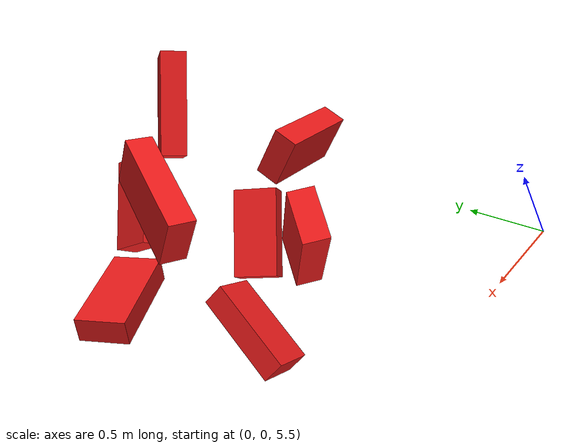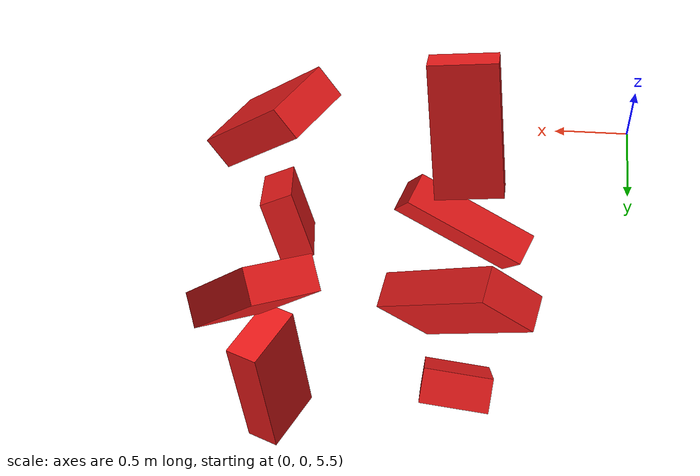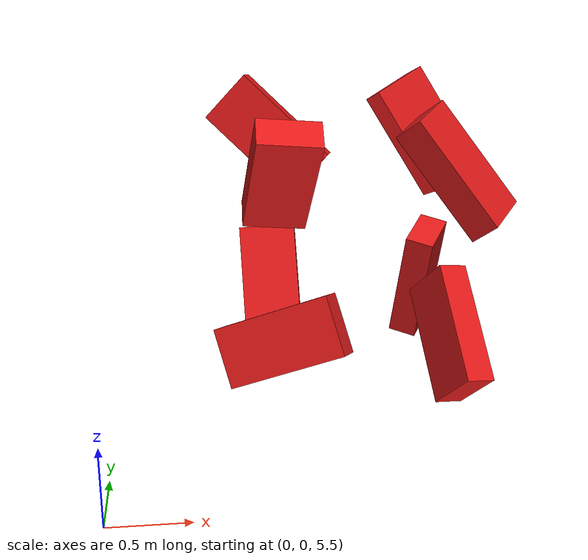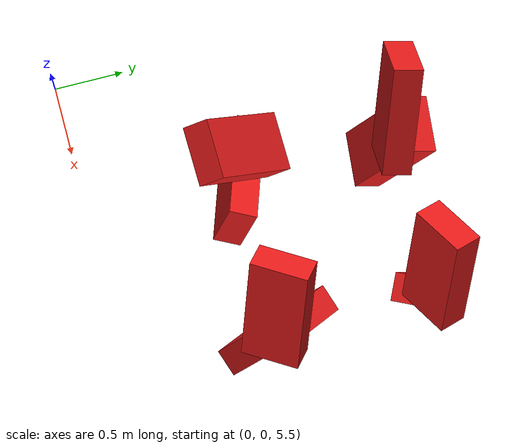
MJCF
<mujoco model="Humanoid and 100 objects">
    <compiler angle="degree"/>

    <option timestep="0.01" iterations="50" solver="PGS" jacobian="sparse" cone="elliptic" tolerance="1e-10"/>

    <size njmax="5000" nconmax="2000" nstack="1000000000"/>

    <default>
        <geom solimp=".9 .9 .01"/>

        <default class="object5">
			<geom type="box" material="geom" rgba=".9 .1 .1 1" size="0.400000 0.200000 0.100000"/>
        </default>
    </default>

    <asset>
        <texture type="skybox" builtin="gradient" width="128" height="128" rgb1=".4 .6 .8" rgb2="0 0 0"/>
        <texture name="texgeom" type="cube" builtin="flat" mark="cross" width="128" height="128"
            rgb1="0.6 0.6 0.6" rgb2="0.6 0.6 0.6" markrgb="1 1 1"/>
        <texture name="texplane" type="2d" builtin="checker" rgb1=".4 .4 .4" rgb2=".6 .6 .6"
            width="512" height="512"/>
        <material name='geom' texture="texgeom" texuniform="true"/>
        <material name='MatPlane' reflectance='0.3' texture="texplane" texrepeat="1 1" texuniform="true"/>
    </asset>

    <visual>
        <quality shadowsize="4096" offsamples="8"/>
        <map znear="0.1" force="0.05"/>
    </visual>

    <statistic extent="4"/>

    <worldbody>
        <light directional="true" diffuse=".8 .8 .8" pos="0 0 10" dir="0 0 -10"/>

        <geom pos="0 0 0" type="plane" size="3 3 .5" rgba=".7 .7 .7 1" material="MatPlane"/>
		<body pos="1.100078 1.100591 6.100496" quat="-0.011589 0.243223 0.559225 -0.792449"> <freejoint/> <geom class="object5"/> </body>
		<body pos="1.100844 1.100772 7.200289" quat="0.294977 0.607266 0.654099 -0.341131"> <freejoint/> <geom class="object5"/> </body>
		<body pos="1.100154 2.200371 6.100223" quat="-0.592693 -0.399000 -0.320470 0.621943"> <freejoint/> <geom class="object5"/> </body>
		<body pos="1.100655 2.200118 7.200825" quat="0.676762 0.626922 0.167326 -0.347799"> <freejoint/> <geom class="object5"/> </body>
		<body pos="2.200347 1.100085 6.100212" quat="-0.627996 0.396148 -0.656921 0.130928"> <freejoint/> <geom class="object5"/> </body>
		<body pos="2.200283 1.100522 7.200974" quat="0.404803 -0.216491 -0.868496 -0.187033"> <freejoint/> <geom class="object5"/> </body>
		<body pos="2.200548 2.200231 6.100006" quat="0.079551 0.734665 -0.235117 0.631395"> <freejoint/> <geom class="object5"/> </body>
		<body pos="2.200153 2.200600 7.200838" quat="-0.765965 -0.405360 -0.368341 0.336609"> <freejoint/> <geom class="object5"/> </body>

    </worldbody>
</mujoco>
